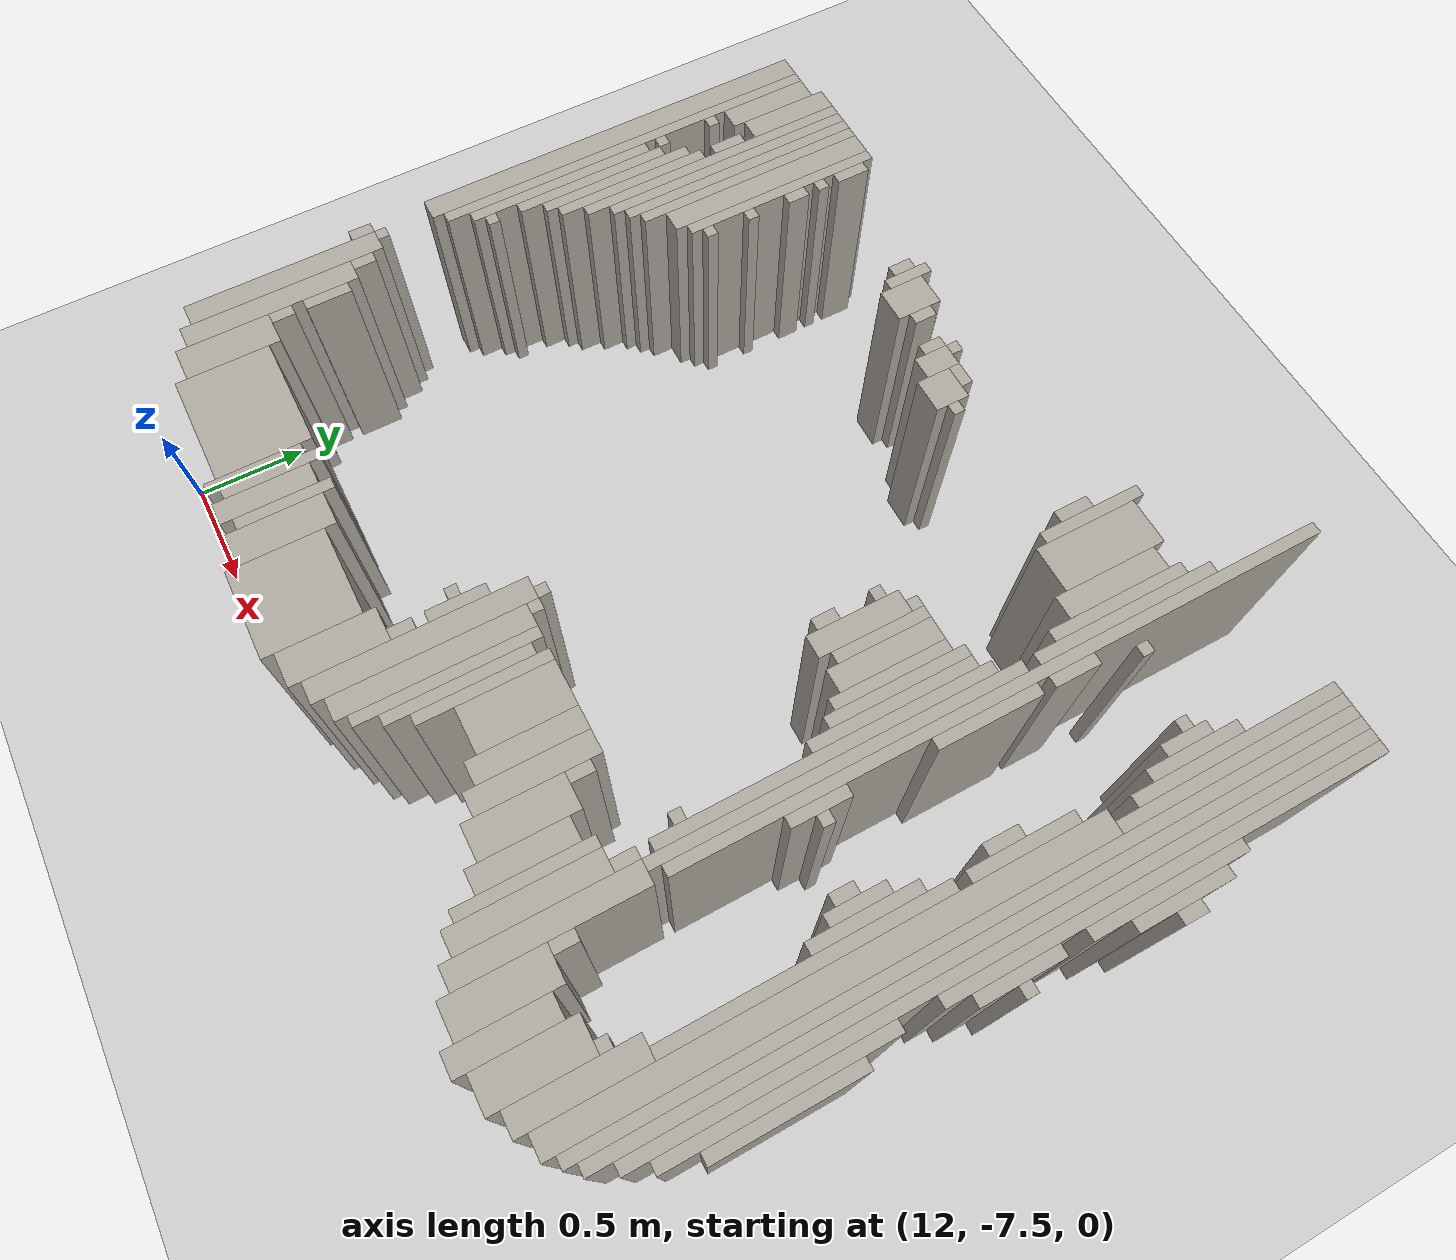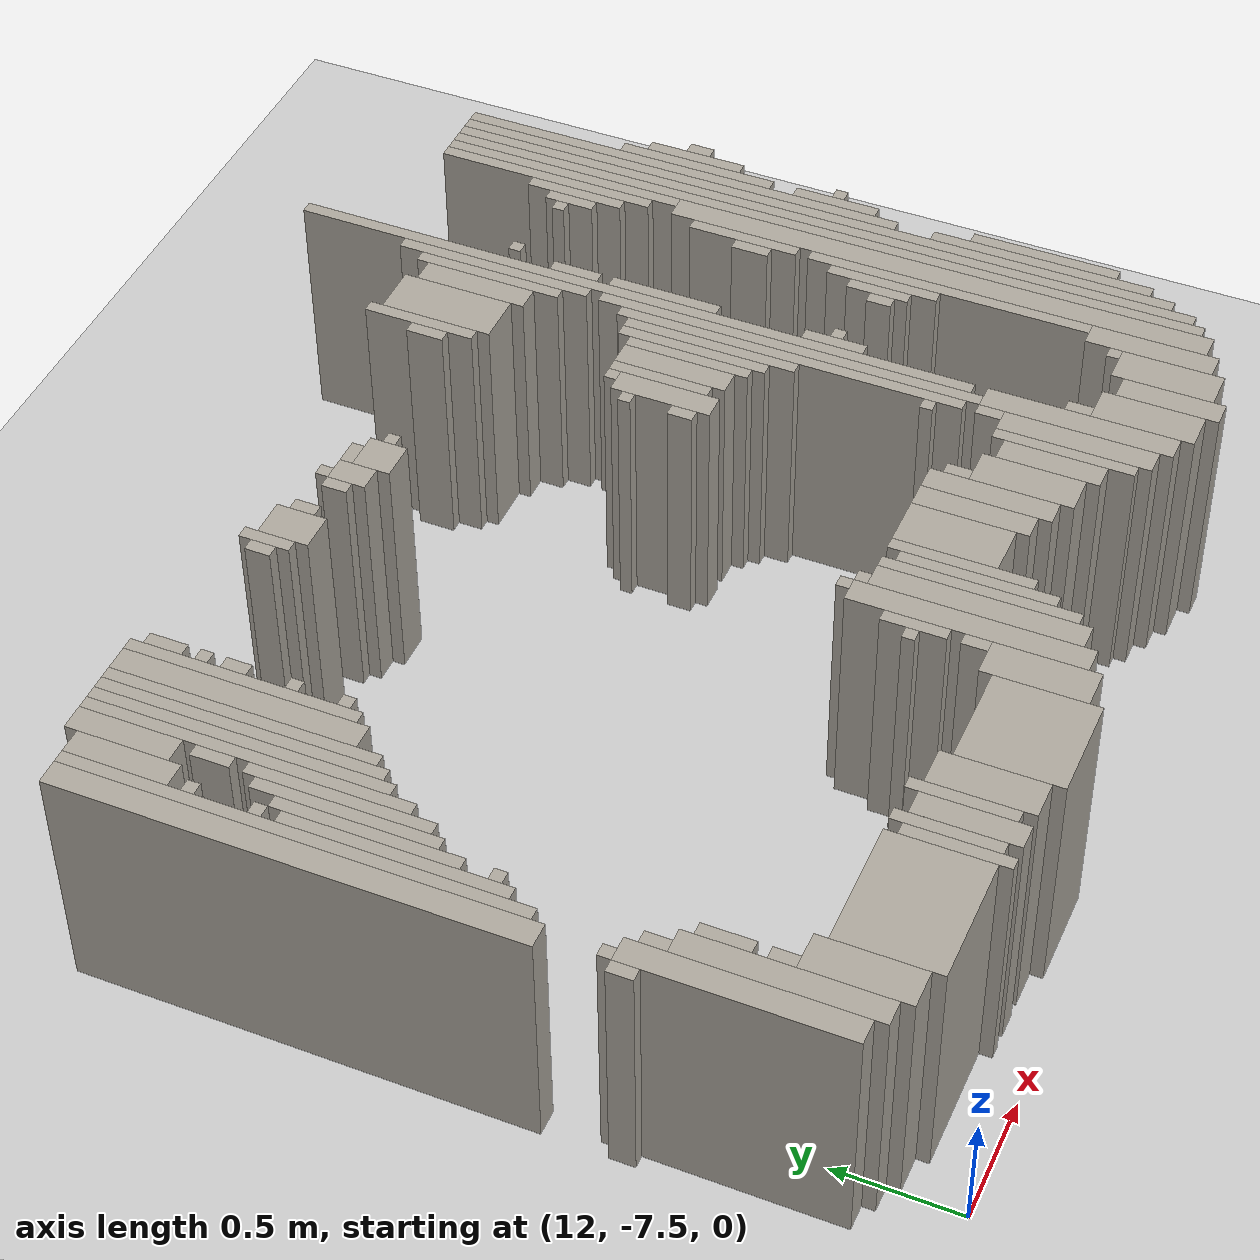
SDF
<sdf version="1.6">
 <world name="fr079_office">
  <include><uri>model://sun</uri></include>
  <include><uri>model://ground_plane</uri></include>
  <model name="fr079_office_walls">
   <static>true</static>
   <link name="w0003">
    <pose>13.252 -7.206 0.500 0 0 0</pose>
    <collision name="c"><geometry><box><size>0.400 0.400 1.000</size></box></geometry></collision>
    <visual name="v">
     <geometry><box><size>0.400 0.400 1.000</size></box></geometry>
     <material><ambient>0.68 0.66 0.62 1</ambient><diffuse>0.68 0.66 0.62 1</diffuse></material>
    </visual>
   </link>
   <link name="w0006">
    <pose>12.677 -7.156 0.500 0 0 0</pose>
    <collision name="c"><geometry><box><size>0.050 0.400 1.000</size></box></geometry></collision>
    <visual name="v">
     <geometry><box><size>0.050 0.400 1.000</size></box></geometry>
     <material><ambient>0.68 0.66 0.62 1</ambient><diffuse>0.68 0.66 0.62 1</diffuse></material>
    </visual>
   </link>
   <link name="w0007">
    <pose>12.802 -7.156 0.500 0 0 0</pose>
    <collision name="c"><geometry><box><size>0.100 0.400 1.000</size></box></geometry></collision>
    <visual name="v">
     <geometry><box><size>0.100 0.400 1.000</size></box></geometry>
     <material><ambient>0.68 0.66 0.62 1</ambient><diffuse>0.68 0.66 0.62 1</diffuse></material>
    </visual>
   </link>
   <link name="w0008">
    <pose>12.977 -7.156 0.500 0 0 0</pose>
    <collision name="c"><geometry><box><size>0.150 0.400 1.000</size></box></geometry></collision>
    <visual name="v">
     <geometry><box><size>0.150 0.400 1.000</size></box></geometry>
     <material><ambient>0.68 0.66 0.62 1</ambient><diffuse>0.68 0.66 0.62 1</diffuse></material>
    </visual>
   </link>
   <link name="w0009">
    <pose>13.527 -7.156 0.500 0 0 0</pose>
    <collision name="c"><geometry><box><size>0.150 0.400 1.000</size></box></geometry></collision>
    <visual name="v">
     <geometry><box><size>0.150 0.400 1.000</size></box></geometry>
     <material><ambient>0.68 0.66 0.62 1</ambient><diffuse>0.68 0.66 0.62 1</diffuse></material>
    </visual>
   </link>
   <link name="w0010">
    <pose>15.052 -7.156 0.500 0 0 0</pose>
    <collision name="c"><geometry><box><size>0.100 0.400 1.000</size></box></geometry></collision>
    <visual name="v">
     <geometry><box><size>0.100 0.400 1.000</size></box></geometry>
     <material><ambient>0.68 0.66 0.62 1</ambient><diffuse>0.68 0.66 0.62 1</diffuse></material>
    </visual>
   </link>
   <link name="w0022">
    <pose>12.402 -7.106 0.500 0 0 0</pose>
    <collision name="c"><geometry><box><size>0.500 0.400 1.000</size></box></geometry></collision>
    <visual name="v">
     <geometry><box><size>0.500 0.400 1.000</size></box></geometry>
     <material><ambient>0.68 0.66 0.62 1</ambient><diffuse>0.68 0.66 0.62 1</diffuse></material>
    </visual>
   </link>
   <link name="w0023">
    <pose>12.727 -7.106 0.500 0 0 0</pose>
    <collision name="c"><geometry><box><size>0.050 0.400 1.000</size></box></geometry></collision>
    <visual name="v">
     <geometry><box><size>0.050 0.400 1.000</size></box></geometry>
     <material><ambient>0.68 0.66 0.62 1</ambient><diffuse>0.68 0.66 0.62 1</diffuse></material>
    </visual>
   </link>
   <link name="w0024">
    <pose>12.877 -7.106 0.500 0 0 0</pose>
    <collision name="c"><geometry><box><size>0.050 0.400 1.000</size></box></geometry></collision>
    <visual name="v">
     <geometry><box><size>0.050 0.400 1.000</size></box></geometry>
     <material><ambient>0.68 0.66 0.62 1</ambient><diffuse>0.68 0.66 0.62 1</diffuse></material>
    </visual>
   </link>
   <link name="w0025">
    <pose>13.652 -6.856 0.500 0 0 0</pose>
    <collision name="c"><geometry><box><size>0.100 0.900 1.000</size></box></geometry></collision>
    <visual name="v">
     <geometry><box><size>0.100 0.900 1.000</size></box></geometry>
     <material><ambient>0.68 0.66 0.62 1</ambient><diffuse>0.68 0.66 0.62 1</diffuse></material>
    </visual>
   </link>
   <link name="w0026">
    <pose>14.927 -7.106 0.500 0 0 0</pose>
    <collision name="c"><geometry><box><size>0.150 0.400 1.000</size></box></geometry></collision>
    <visual name="v">
     <geometry><box><size>0.150 0.400 1.000</size></box></geometry>
     <material><ambient>0.68 0.66 0.62 1</ambient><diffuse>0.68 0.66 0.62 1</diffuse></material>
    </visual>
   </link>
   <link name="w0027">
    <pose>15.177 -7.106 0.500 0 0 0</pose>
    <collision name="c"><geometry><box><size>0.150 0.400 1.000</size></box></geometry></collision>
    <visual name="v">
     <geometry><box><size>0.150 0.400 1.000</size></box></geometry>
     <material><ambient>0.68 0.66 0.62 1</ambient><diffuse>0.68 0.66 0.62 1</diffuse></material>
    </visual>
   </link>
   <link name="w0047">
    <pose>12.077 -7.056 0.500 0 0 0</pose>
    <collision name="c"><geometry><box><size>0.150 0.400 1.000</size></box></geometry></collision>
    <visual name="v">
     <geometry><box><size>0.150 0.400 1.000</size></box></geometry>
     <material><ambient>0.68 0.66 0.62 1</ambient><diffuse>0.68 0.66 0.62 1</diffuse></material>
    </visual>
   </link>
   <link name="w0048">
    <pose>13.752 -6.856 0.500 0 0 0</pose>
    <collision name="c"><geometry><box><size>0.100 0.800 1.000</size></box></geometry></collision>
    <visual name="v">
     <geometry><box><size>0.100 0.800 1.000</size></box></geometry>
     <material><ambient>0.68 0.66 0.62 1</ambient><diffuse>0.68 0.66 0.62 1</diffuse></material>
    </visual>
   </link>
   <link name="w0049">
    <pose>14.802 -6.881 0.500 0 0 0</pose>
    <collision name="c"><geometry><box><size>0.100 0.750 1.000</size></box></geometry></collision>
    <visual name="v">
     <geometry><box><size>0.100 0.750 1.000</size></box></geometry>
     <material><ambient>0.68 0.66 0.62 1</ambient><diffuse>0.68 0.66 0.62 1</diffuse></material>
    </visual>
   </link>
   <link name="w0050">
    <pose>15.302 -7.006 0.500 0 0 0</pose>
    <collision name="c"><geometry><box><size>0.100 0.500 1.000</size></box></geometry></collision>
    <visual name="v">
     <geometry><box><size>0.100 0.500 1.000</size></box></geometry>
     <material><ambient>0.68 0.66 0.62 1</ambient><diffuse>0.68 0.66 0.62 1</diffuse></material>
    </visual>
   </link>
   <link name="w0072">
    <pose>11.952 -6.831 0.500 0 0 0</pose>
    <collision name="c"><geometry><box><size>0.100 0.750 1.000</size></box></geometry></collision>
    <visual name="v">
     <geometry><box><size>0.100 0.750 1.000</size></box></geometry>
     <material><ambient>0.68 0.66 0.62 1</ambient><diffuse>0.68 0.66 0.62 1</diffuse></material>
    </visual>
   </link>
   <link name="w0073">
    <pose>13.827 -6.831 0.500 0 0 0</pose>
    <collision name="c"><geometry><box><size>0.050 0.750 1.000</size></box></geometry></collision>
    <visual name="v">
     <geometry><box><size>0.050 0.750 1.000</size></box></geometry>
     <material><ambient>0.68 0.66 0.62 1</ambient><diffuse>0.68 0.66 0.62 1</diffuse></material>
    </visual>
   </link>
   <link name="w0074">
    <pose>14.702 -6.906 0.500 0 0 0</pose>
    <collision name="c"><geometry><box><size>0.100 0.600 1.000</size></box></geometry></collision>
    <visual name="v">
     <geometry><box><size>0.100 0.600 1.000</size></box></geometry>
     <material><ambient>0.68 0.66 0.62 1</ambient><diffuse>0.68 0.66 0.62 1</diffuse></material>
    </visual>
   </link>
   <link name="w0075">
    <pose>15.402 -6.106 0.500 0 0 0</pose>
    <collision name="c"><geometry><box><size>0.100 2.200 1.000</size></box></geometry></collision>
    <visual name="v">
     <geometry><box><size>0.100 2.200 1.000</size></box></geometry>
     <material><ambient>0.68 0.66 0.62 1</ambient><diffuse>0.68 0.66 0.62 1</diffuse></material>
    </visual>
   </link>
   <link name="w0098">
    <pose>11.852 -6.731 0.500 0 0 0</pose>
    <collision name="c"><geometry><box><size>0.100 0.850 1.000</size></box></geometry></collision>
    <visual name="v">
     <geometry><box><size>0.100 0.850 1.000</size></box></geometry>
     <material><ambient>0.68 0.66 0.62 1</ambient><diffuse>0.68 0.66 0.62 1</diffuse></material>
    </visual>
   </link>
   <link name="w0099">
    <pose>14.627 -6.881 0.500 0 0 0</pose>
    <collision name="c"><geometry><box><size>0.050 0.550 1.000</size></box></geometry></collision>
    <visual name="v">
     <geometry><box><size>0.050 0.550 1.000</size></box></geometry>
     <material><ambient>0.68 0.66 0.62 1</ambient><diffuse>0.68 0.66 0.62 1</diffuse></material>
    </visual>
   </link>
   <link name="w0100">
    <pose>15.477 -5.581 0.500 0 0 0</pose>
    <collision name="c"><geometry><box><size>0.050 3.150 1.000</size></box></geometry></collision>
    <visual name="v">
     <geometry><box><size>0.050 3.150 1.000</size></box></geometry>
     <material><ambient>0.68 0.66 0.62 1</ambient><diffuse>0.68 0.66 0.62 1</diffuse></material>
    </visual>
   </link>
   <link name="w0121">
    <pose>13.877 -6.806 0.500 0 0 0</pose>
    <collision name="c"><geometry><box><size>0.050 0.600 1.000</size></box></geometry></collision>
    <visual name="v">
     <geometry><box><size>0.050 0.600 1.000</size></box></geometry>
     <material><ambient>0.68 0.66 0.62 1</ambient><diffuse>0.68 0.66 0.62 1</diffuse></material>
    </visual>
   </link>
   <link name="w0122">
    <pose>15.527 -5.556 0.500 0 0 0</pose>
    <collision name="c"><geometry><box><size>0.050 3.100 1.000</size></box></geometry></collision>
    <visual name="v">
     <geometry><box><size>0.050 3.100 1.000</size></box></geometry>
     <material><ambient>0.68 0.66 0.62 1</ambient><diffuse>0.68 0.66 0.62 1</diffuse></material>
    </visual>
   </link>
   <link name="w0134">
    <pose>14.552 -6.856 0.500 0 0 0</pose>
    <collision name="c"><geometry><box><size>0.100 0.400 1.000</size></box></geometry></collision>
    <visual name="v">
     <geometry><box><size>0.100 0.400 1.000</size></box></geometry>
     <material><ambient>0.68 0.66 0.62 1</ambient><diffuse>0.68 0.66 0.62 1</diffuse></material>
    </visual>
   </link>
   <link name="w0148">
    <pose>13.927 -6.731 0.500 0 0 0</pose>
    <collision name="c"><geometry><box><size>0.050 0.550 1.000</size></box></geometry></collision>
    <visual name="v">
     <geometry><box><size>0.050 0.550 1.000</size></box></geometry>
     <material><ambient>0.68 0.66 0.62 1</ambient><diffuse>0.68 0.66 0.62 1</diffuse></material>
    </visual>
   </link>
   <link name="w0149">
    <pose>14.427 -6.806 0.500 0 0 0</pose>
    <collision name="c"><geometry><box><size>0.150 0.400 1.000</size></box></geometry></collision>
    <visual name="v">
     <geometry><box><size>0.150 0.400 1.000</size></box></geometry>
     <material><ambient>0.68 0.66 0.62 1</ambient><diffuse>0.68 0.66 0.62 1</diffuse></material>
    </visual>
   </link>
   <link name="w0150">
    <pose>15.577 -5.506 0.500 0 0 0</pose>
    <collision name="c"><geometry><box><size>0.050 3.000 1.000</size></box></geometry></collision>
    <visual name="v">
     <geometry><box><size>0.050 3.000 1.000</size></box></geometry>
     <material><ambient>0.68 0.66 0.62 1</ambient><diffuse>0.68 0.66 0.62 1</diffuse></material>
    </visual>
   </link>
   <link name="w0160">
    <pose>13.577 -6.906 0.500 0 0 0</pose>
    <collision name="c"><geometry><box><size>0.050 0.100 1.000</size></box></geometry></collision>
    <visual name="v">
     <geometry><box><size>0.050 0.100 1.000</size></box></geometry>
     <material><ambient>0.68 0.66 0.62 1</ambient><diffuse>0.68 0.66 0.62 1</diffuse></material>
    </visual>
   </link>
   <link name="w0161">
    <pose>14.302 -6.706 0.500 0 0 0</pose>
    <collision name="c"><geometry><box><size>0.100 0.500 1.000</size></box></geometry></collision>
    <visual name="v">
     <geometry><box><size>0.100 0.500 1.000</size></box></geometry>
     <material><ambient>0.68 0.66 0.62 1</ambient><diffuse>0.68 0.66 0.62 1</diffuse></material>
    </visual>
   </link>
   <link name="w0174">
    <pose>14.202 -6.681 0.500 0 0 0</pose>
    <collision name="c"><geometry><box><size>0.100 0.450 1.000</size></box></geometry></collision>
    <visual name="v">
     <geometry><box><size>0.100 0.450 1.000</size></box></geometry>
     <material><ambient>0.68 0.66 0.62 1</ambient><diffuse>0.68 0.66 0.62 1</diffuse></material>
    </visual>
   </link>
   <link name="w0175">
    <pose>14.877 -6.856 0.500 0 0 0</pose>
    <collision name="c"><geometry><box><size>0.050 0.100 1.000</size></box></geometry></collision>
    <visual name="v">
     <geometry><box><size>0.050 0.100 1.000</size></box></geometry>
     <material><ambient>0.68 0.66 0.62 1</ambient><diffuse>0.68 0.66 0.62 1</diffuse></material>
    </visual>
   </link>
   <link name="w0176">
    <pose>15.227 -6.881 0.500 0 0 0</pose>
    <collision name="c"><geometry><box><size>0.050 0.050 1.000</size></box></geometry></collision>
    <visual name="v">
     <geometry><box><size>0.050 0.050 1.000</size></box></geometry>
     <material><ambient>0.68 0.66 0.62 1</ambient><diffuse>0.68 0.66 0.62 1</diffuse></material>
    </visual>
   </link>
   <link name="w0177">
    <pose>15.627 -6.456 0.500 0 0 0</pose>
    <collision name="c"><geometry><box><size>0.050 0.900 1.000</size></box></geometry></collision>
    <visual name="v">
     <geometry><box><size>0.050 0.900 1.000</size></box></geometry>
     <material><ambient>0.68 0.66 0.62 1</ambient><diffuse>0.68 0.66 0.62 1</diffuse></material>
    </visual>
   </link>
   <link name="w0195">
    <pose>12.027 -6.806 0.500 0 0 0</pose>
    <collision name="c"><geometry><box><size>0.050 0.100 1.000</size></box></geometry></collision>
    <visual name="v">
     <geometry><box><size>0.050 0.100 1.000</size></box></geometry>
     <material><ambient>0.68 0.66 0.62 1</ambient><diffuse>0.68 0.66 0.62 1</diffuse></material>
    </visual>
   </link>
   <link name="w0196">
    <pose>14.052 -6.656 0.500 0 0 0</pose>
    <collision name="c"><geometry><box><size>0.200 0.400 1.000</size></box></geometry></collision>
    <visual name="v">
     <geometry><box><size>0.200 0.400 1.000</size></box></geometry>
     <material><ambient>0.68 0.66 0.62 1</ambient><diffuse>0.68 0.66 0.62 1</diffuse></material>
    </visual>
   </link>
   <link name="w0209">
    <pose>13.577 -6.681 0.500 0 0 0</pose>
    <collision name="c"><geometry><box><size>0.050 0.250 1.000</size></box></geometry></collision>
    <visual name="v">
     <geometry><box><size>0.050 0.250 1.000</size></box></geometry>
     <material><ambient>0.68 0.66 0.62 1</ambient><diffuse>0.68 0.66 0.62 1</diffuse></material>
    </visual>
   </link>
   <link name="w0228">
    <pose>15.327 -6.181 0.500 0 0 0</pose>
    <collision name="c"><geometry><box><size>0.050 1.150 1.000</size></box></geometry></collision>
    <visual name="v">
     <geometry><box><size>0.050 1.150 1.000</size></box></geometry>
     <material><ambient>0.68 0.66 0.62 1</ambient><diffuse>0.68 0.66 0.62 1</diffuse></material>
    </visual>
   </link>
   <link name="w0229">
    <pose>15.677 -6.456 0.500 0 0 0</pose>
    <collision name="c"><geometry><box><size>0.050 0.600 1.000</size></box></geometry></collision>
    <visual name="v">
     <geometry><box><size>0.050 0.600 1.000</size></box></geometry>
     <material><ambient>0.68 0.66 0.62 1</ambient><diffuse>0.68 0.66 0.62 1</diffuse></material>
    </visual>
   </link>
   <link name="w0242">
    <pose>12.027 -6.606 0.500 0 0 0</pose>
    <collision name="c"><geometry><box><size>0.050 0.200 1.000</size></box></geometry></collision>
    <visual name="v">
     <geometry><box><size>0.050 0.200 1.000</size></box></geometry>
     <material><ambient>0.68 0.66 0.62 1</ambient><diffuse>0.68 0.66 0.62 1</diffuse></material>
    </visual>
   </link>
   <link name="w0243">
    <pose>13.527 -6.681 0.500 0 0 0</pose>
    <collision name="c"><geometry><box><size>0.050 0.050 1.000</size></box></geometry></collision>
    <visual name="v">
     <geometry><box><size>0.050 0.050 1.000</size></box></geometry>
     <material><ambient>0.68 0.66 0.62 1</ambient><diffuse>0.68 0.66 0.62 1</diffuse></material>
    </visual>
   </link>
   <link name="w0266">
    <pose>14.377 -6.556 0.500 0 0 0</pose>
    <collision name="c"><geometry><box><size>0.050 0.100 1.000</size></box></geometry></collision>
    <visual name="v">
     <geometry><box><size>0.050 0.100 1.000</size></box></geometry>
     <material><ambient>0.68 0.66 0.62 1</ambient><diffuse>0.68 0.66 0.62 1</diffuse></material>
    </visual>
   </link>
   <link name="w0267">
    <pose>14.727 -6.556 0.500 0 0 0</pose>
    <collision name="c"><geometry><box><size>0.050 0.100 1.000</size></box></geometry></collision>
    <visual name="v">
     <geometry><box><size>0.050 0.100 1.000</size></box></geometry>
     <material><ambient>0.68 0.66 0.62 1</ambient><diffuse>0.68 0.66 0.62 1</diffuse></material>
    </visual>
   </link>
   <link name="w0295">
    <pose>14.777 -5.731 0.500 0 0 0</pose>
    <collision name="c"><geometry><box><size>0.050 1.550 1.000</size></box></geometry></collision>
    <visual name="v">
     <geometry><box><size>0.050 1.550 1.000</size></box></geometry>
     <material><ambient>0.68 0.66 0.62 1</ambient><diffuse>0.68 0.66 0.62 1</diffuse></material>
    </visual>
   </link>
   <link name="w0310">
    <pose>11.927 -6.406 0.500 0 0 0</pose>
    <collision name="c"><geometry><box><size>0.050 0.100 1.000</size></box></geometry></collision>
    <visual name="v">
     <geometry><box><size>0.050 0.100 1.000</size></box></geometry>
     <material><ambient>0.68 0.66 0.62 1</ambient><diffuse>0.68 0.66 0.62 1</diffuse></material>
    </visual>
   </link>
   <link name="w0311">
    <pose>13.727 -6.431 0.500 0 0 0</pose>
    <collision name="c"><geometry><box><size>0.050 0.050 1.000</size></box></geometry></collision>
    <visual name="v">
     <geometry><box><size>0.050 0.050 1.000</size></box></geometry>
     <material><ambient>0.68 0.66 0.62 1</ambient><diffuse>0.68 0.66 0.62 1</diffuse></material>
    </visual>
   </link>
   <link name="w0312">
    <pose>14.727 -5.756 0.500 0 0 0</pose>
    <collision name="c"><geometry><box><size>0.050 1.400 1.000</size></box></geometry></collision>
    <visual name="v">
     <geometry><box><size>0.050 1.400 1.000</size></box></geometry>
     <material><ambient>0.68 0.66 0.62 1</ambient><diffuse>0.68 0.66 0.62 1</diffuse></material>
    </visual>
   </link>
   <link name="w0313">
    <pose>14.827 -5.056 0.500 0 0 0</pose>
    <collision name="c"><geometry><box><size>0.050 2.800 1.000</size></box></geometry></collision>
    <visual name="v">
     <geometry><box><size>0.050 2.800 1.000</size></box></geometry>
     <material><ambient>0.68 0.66 0.62 1</ambient><diffuse>0.68 0.66 0.62 1</diffuse></material>
    </visual>
   </link>
   <link name="w0333">
    <pose>11.777 -6.356 0.500 0 0 0</pose>
    <collision name="c"><geometry><box><size>0.050 0.100 1.000</size></box></geometry></collision>
    <visual name="v">
     <geometry><box><size>0.050 0.100 1.000</size></box></geometry>
     <material><ambient>0.68 0.66 0.62 1</ambient><diffuse>0.68 0.66 0.62 1</diffuse></material>
    </visual>
   </link>
   <link name="w0334">
    <pose>13.677 -6.381 0.500 0 0 0</pose>
    <collision name="c"><geometry><box><size>0.050 0.050 1.000</size></box></geometry></collision>
    <visual name="v">
     <geometry><box><size>0.050 0.050 1.000</size></box></geometry>
     <material><ambient>0.68 0.66 0.62 1</ambient><diffuse>0.68 0.66 0.62 1</diffuse></material>
    </visual>
   </link>
   <link name="w0348">
    <pose>14.677 -6.331 0.500 0 0 0</pose>
    <collision name="c"><geometry><box><size>0.050 0.050 1.000</size></box></geometry></collision>
    <visual name="v">
     <geometry><box><size>0.050 0.050 1.000</size></box></geometry>
     <material><ambient>0.68 0.66 0.62 1</ambient><diffuse>0.68 0.66 0.62 1</diffuse></material>
    </visual>
   </link>
   <link name="w0359">
    <pose>11.827 -6.281 0.500 0 0 0</pose>
    <collision name="c"><geometry><box><size>0.050 0.050 1.000</size></box></geometry></collision>
    <visual name="v">
     <geometry><box><size>0.050 0.050 1.000</size></box></geometry>
     <material><ambient>0.68 0.66 0.62 1</ambient><diffuse>0.68 0.66 0.62 1</diffuse></material>
    </visual>
   </link>
   <link name="w0391">
    <pose>15.277 -5.931 0.500 0 0 0</pose>
    <collision name="c"><geometry><box><size>0.050 0.450 1.000</size></box></geometry></collision>
    <visual name="v">
     <geometry><box><size>0.050 0.450 1.000</size></box></geometry>
     <material><ambient>0.68 0.66 0.62 1</ambient><diffuse>0.68 0.66 0.62 1</diffuse></material>
    </visual>
   </link>
   <link name="w0417">
    <pose>11.802 -5.156 0.500 0 0 0</pose>
    <collision name="c"><geometry><box><size>0.100 1.800 1.000</size></box></geometry></collision>
    <visual name="v">
     <geometry><box><size>0.100 1.800 1.000</size></box></geometry>
     <material><ambient>0.68 0.66 0.62 1</ambient><diffuse>0.68 0.66 0.62 1</diffuse></material>
    </visual>
   </link>
   <link name="w0418">
    <pose>15.227 -5.931 0.500 0 0 0</pose>
    <collision name="c"><geometry><box><size>0.050 0.250 1.000</size></box></geometry></collision>
    <visual name="v">
     <geometry><box><size>0.050 0.250 1.000</size></box></geometry>
     <material><ambient>0.68 0.66 0.62 1</ambient><diffuse>0.68 0.66 0.62 1</diffuse></material>
    </visual>
   </link>
   <link name="w0429">
    <pose>11.877 -5.131 0.500 0 0 0</pose>
    <collision name="c"><geometry><box><size>0.050 1.750 1.000</size></box></geometry></collision>
    <visual name="v">
     <geometry><box><size>0.050 1.750 1.000</size></box></geometry>
     <material><ambient>0.68 0.66 0.62 1</ambient><diffuse>0.68 0.66 0.62 1</diffuse></material>
    </visual>
   </link>
   <link name="w0430">
    <pose>14.877 -5.881 0.500 0 0 0</pose>
    <collision name="c"><geometry><box><size>0.050 0.250 1.000</size></box></geometry></collision>
    <visual name="v">
     <geometry><box><size>0.050 0.250 1.000</size></box></geometry>
     <material><ambient>0.68 0.66 0.62 1</ambient><diffuse>0.68 0.66 0.62 1</diffuse></material>
    </visual>
   </link>
   <link name="w0431">
    <pose>15.177 -5.956 0.500 0 0 0</pose>
    <collision name="c"><geometry><box><size>0.050 0.100 1.000</size></box></geometry></collision>
    <visual name="v">
     <geometry><box><size>0.050 0.100 1.000</size></box></geometry>
     <material><ambient>0.68 0.66 0.62 1</ambient><diffuse>0.68 0.66 0.62 1</diffuse></material>
    </visual>
   </link>
   <link name="w0462">
    <pose>11.927 -5.481 0.500 0 0 0</pose>
    <collision name="c"><geometry><box><size>0.050 0.850 1.000</size></box></geometry></collision>
    <visual name="v">
     <geometry><box><size>0.050 0.850 1.000</size></box></geometry>
     <material><ambient>0.68 0.66 0.62 1</ambient><diffuse>0.68 0.66 0.62 1</diffuse></material>
    </visual>
   </link>
   <link name="w0463">
    <pose>14.927 -5.881 0.500 0 0 0</pose>
    <collision name="c"><geometry><box><size>0.050 0.050 1.000</size></box></geometry></collision>
    <visual name="v">
     <geometry><box><size>0.050 0.050 1.000</size></box></geometry>
     <material><ambient>0.68 0.66 0.62 1</ambient><diffuse>0.68 0.66 0.62 1</diffuse></material>
    </visual>
   </link>
   <link name="w0476">
    <pose>11.977 -5.831 0.500 0 0 0</pose>
    <collision name="c"><geometry><box><size>0.050 0.050 1.000</size></box></geometry></collision>
    <visual name="v">
     <geometry><box><size>0.050 0.050 1.000</size></box></geometry>
     <material><ambient>0.68 0.66 0.62 1</ambient><diffuse>0.68 0.66 0.62 1</diffuse></material>
    </visual>
   </link>
   <link name="w0477">
    <pose>15.627 -4.931 0.500 0 0 0</pose>
    <collision name="c"><geometry><box><size>0.050 1.850 1.000</size></box></geometry></collision>
    <visual name="v">
     <geometry><box><size>0.050 1.850 1.000</size></box></geometry>
     <material><ambient>0.68 0.66 0.62 1</ambient><diffuse>0.68 0.66 0.62 1</diffuse></material>
    </visual>
   </link>
   <link name="w0489">
    <pose>14.677 -5.456 0.500 0 0 0</pose>
    <collision name="c"><geometry><box><size>0.050 0.700 1.000</size></box></geometry></collision>
    <visual name="v">
     <geometry><box><size>0.050 0.700 1.000</size></box></geometry>
     <material><ambient>0.68 0.66 0.62 1</ambient><diffuse>0.68 0.66 0.62 1</diffuse></material>
    </visual>
   </link>
   <link name="w0505">
    <pose>15.677 -5.581 0.500 0 0 0</pose>
    <collision name="c"><geometry><box><size>0.050 0.350 1.000</size></box></geometry></collision>
    <visual name="v">
     <geometry><box><size>0.050 0.350 1.000</size></box></geometry>
     <material><ambient>0.68 0.66 0.62 1</ambient><diffuse>0.68 0.66 0.62 1</diffuse></material>
    </visual>
   </link>
   <link name="w0517">
    <pose>11.977 -5.356 0.500 0 0 0</pose>
    <collision name="c"><geometry><box><size>0.050 0.700 1.000</size></box></geometry></collision>
    <visual name="v">
     <geometry><box><size>0.050 0.700 1.000</size></box></geometry>
     <material><ambient>0.68 0.66 0.62 1</ambient><diffuse>0.68 0.66 0.62 1</diffuse></material>
    </visual>
   </link>
   <link name="w0518">
    <pose>14.627 -5.406 0.500 0 0 0</pose>
    <collision name="c"><geometry><box><size>0.050 0.600 1.000</size></box></geometry></collision>
    <visual name="v">
     <geometry><box><size>0.050 0.600 1.000</size></box></geometry>
     <material><ambient>0.68 0.66 0.62 1</ambient><diffuse>0.68 0.66 0.62 1</diffuse></material>
    </visual>
   </link>
   <link name="w0526">
    <pose>14.577 -5.406 0.500 0 0 0</pose>
    <collision name="c"><geometry><box><size>0.050 0.500 1.000</size></box></geometry></collision>
    <visual name="v">
     <geometry><box><size>0.050 0.500 1.000</size></box></geometry>
     <material><ambient>0.68 0.66 0.62 1</ambient><diffuse>0.68 0.66 0.62 1</diffuse></material>
    </visual>
   </link>
   <link name="w0538">
    <pose>12.027 -5.256 0.500 0 0 0</pose>
    <collision name="c"><geometry><box><size>0.050 0.700 1.000</size></box></geometry></collision>
    <visual name="v">
     <geometry><box><size>0.050 0.700 1.000</size></box></geometry>
     <material><ambient>0.68 0.66 0.62 1</ambient><diffuse>0.68 0.66 0.62 1</diffuse></material>
    </visual>
   </link>
   <link name="w0539">
    <pose>14.352 -5.406 0.500 0 0 0</pose>
    <collision name="c"><geometry><box><size>0.100 0.400 1.000</size></box></geometry></collision>
    <visual name="v">
     <geometry><box><size>0.100 0.400 1.000</size></box></geometry>
     <material><ambient>0.68 0.66 0.62 1</ambient><diffuse>0.68 0.66 0.62 1</diffuse></material>
    </visual>
   </link>
   <link name="w0540">
    <pose>14.502 -5.381 0.500 0 0 0</pose>
    <collision name="c"><geometry><box><size>0.100 0.450 1.000</size></box></geometry></collision>
    <visual name="v">
     <geometry><box><size>0.100 0.450 1.000</size></box></geometry>
     <material><ambient>0.68 0.66 0.62 1</ambient><diffuse>0.68 0.66 0.62 1</diffuse></material>
    </visual>
   </link>
   <link name="w0541">
    <pose>15.727 -5.581 0.500 0 0 0</pose>
    <collision name="c"><geometry><box><size>0.050 0.050 1.000</size></box></geometry></collision>
    <visual name="v">
     <geometry><box><size>0.050 0.050 1.000</size></box></geometry>
     <material><ambient>0.68 0.66 0.62 1</ambient><diffuse>0.68 0.66 0.62 1</diffuse></material>
    </visual>
   </link>
   <link name="w0549">
    <pose>12.077 -5.206 0.500 0 0 0</pose>
    <collision name="c"><geometry><box><size>0.050 0.700 1.000</size></box></geometry></collision>
    <visual name="v">
     <geometry><box><size>0.050 0.700 1.000</size></box></geometry>
     <material><ambient>0.68 0.66 0.62 1</ambient><diffuse>0.68 0.66 0.62 1</diffuse></material>
    </visual>
   </link>
   <link name="w0550">
    <pose>14.277 -5.506 0.500 0 0 0</pose>
    <collision name="c"><geometry><box><size>0.050 0.100 1.000</size></box></geometry></collision>
    <visual name="v">
     <geometry><box><size>0.050 0.100 1.000</size></box></geometry>
     <material><ambient>0.68 0.66 0.62 1</ambient><diffuse>0.68 0.66 0.62 1</diffuse></material>
    </visual>
   </link>
   <link name="w0551">
    <pose>14.427 -5.356 0.500 0 0 0</pose>
    <collision name="c"><geometry><box><size>0.050 0.400 1.000</size></box></geometry></collision>
    <visual name="v">
     <geometry><box><size>0.050 0.400 1.000</size></box></geometry>
     <material><ambient>0.68 0.66 0.62 1</ambient><diffuse>0.68 0.66 0.62 1</diffuse></material>
    </visual>
   </link>
   <link name="w0552">
    <pose>15.327 -5.331 0.500 0 0 0</pose>
    <collision name="c"><geometry><box><size>0.050 0.450 1.000</size></box></geometry></collision>
    <visual name="v">
     <geometry><box><size>0.050 0.450 1.000</size></box></geometry>
     <material><ambient>0.68 0.66 0.62 1</ambient><diffuse>0.68 0.66 0.62 1</diffuse></material>
    </visual>
   </link>
   <link name="w0571">
    <pose>12.127 -4.831 0.500 0 0 0</pose>
    <collision name="c"><geometry><box><size>0.050 1.250 1.000</size></box></geometry></collision>
    <visual name="v">
     <geometry><box><size>0.050 1.250 1.000</size></box></geometry>
     <material><ambient>0.68 0.66 0.62 1</ambient><diffuse>0.68 0.66 0.62 1</diffuse></material>
    </visual>
   </link>
   <link name="w0572">
    <pose>15.277 -5.381 0.500 0 0 0</pose>
    <collision name="c"><geometry><box><size>0.050 0.150 1.000</size></box></geometry></collision>
    <visual name="v">
     <geometry><box><size>0.050 0.150 1.000</size></box></geometry>
     <material><ambient>0.68 0.66 0.62 1</ambient><diffuse>0.68 0.66 0.62 1</diffuse></material>
    </visual>
   </link>
   <link name="w0583">
    <pose>14.877 -5.181 0.500 0 0 0</pose>
    <collision name="c"><geometry><box><size>0.050 0.450 1.000</size></box></geometry></collision>
    <visual name="v">
     <geometry><box><size>0.050 0.450 1.000</size></box></geometry>
     <material><ambient>0.68 0.66 0.62 1</ambient><diffuse>0.68 0.66 0.62 1</diffuse></material>
    </visual>
   </link>
   <link name="w0597">
    <pose>12.177 -4.781 0.500 0 0 0</pose>
    <collision name="c"><geometry><box><size>0.050 1.150 1.000</size></box></geometry></collision>
    <visual name="v">
     <geometry><box><size>0.050 1.150 1.000</size></box></geometry>
     <material><ambient>0.68 0.66 0.62 1</ambient><diffuse>0.68 0.66 0.62 1</diffuse></material>
    </visual>
   </link>
   <link name="w0609">
    <pose>12.227 -4.756 0.500 0 0 0</pose>
    <collision name="c"><geometry><box><size>0.050 1.100 1.000</size></box></geometry></collision>
    <visual name="v">
     <geometry><box><size>0.050 1.100 1.000</size></box></geometry>
     <material><ambient>0.68 0.66 0.62 1</ambient><diffuse>0.68 0.66 0.62 1</diffuse></material>
    </visual>
   </link>
   <link name="w0610">
    <pose>14.277 -5.281 0.500 0 0 0</pose>
    <collision name="c"><geometry><box><size>0.050 0.050 1.000</size></box></geometry></collision>
    <visual name="v">
     <geometry><box><size>0.050 0.050 1.000</size></box></geometry>
     <material><ambient>0.68 0.66 0.62 1</ambient><diffuse>0.68 0.66 0.62 1</diffuse></material>
    </visual>
   </link>
   <link name="w0611">
    <pose>15.677 -4.981 0.500 0 0 0</pose>
    <collision name="c"><geometry><box><size>0.050 0.650 1.000</size></box></geometry></collision>
    <visual name="v">
     <geometry><box><size>0.050 0.650 1.000</size></box></geometry>
     <material><ambient>0.68 0.66 0.62 1</ambient><diffuse>0.68 0.66 0.62 1</diffuse></material>
    </visual>
   </link>
   <link name="w0626">
    <pose>12.277 -4.731 0.500 0 0 0</pose>
    <collision name="c"><geometry><box><size>0.050 1.050 1.000</size></box></geometry></collision>
    <visual name="v">
     <geometry><box><size>0.050 1.050 1.000</size></box></geometry>
     <material><ambient>0.68 0.66 0.62 1</ambient><diffuse>0.68 0.66 0.62 1</diffuse></material>
    </visual>
   </link>
   <link name="w0645">
    <pose>14.377 -5.181 0.500 0 0 0</pose>
    <collision name="c"><geometry><box><size>0.050 0.050 1.000</size></box></geometry></collision>
    <visual name="v">
     <geometry><box><size>0.050 0.050 1.000</size></box></geometry>
     <material><ambient>0.68 0.66 0.62 1</ambient><diffuse>0.68 0.66 0.62 1</diffuse></material>
    </visual>
   </link>
   <link name="w0655">
    <pose>12.352 -4.681 0.500 0 0 0</pose>
    <collision name="c"><geometry><box><size>0.100 0.950 1.000</size></box></geometry></collision>
    <visual name="v">
     <geometry><box><size>0.100 0.950 1.000</size></box></geometry>
     <material><ambient>0.68 0.66 0.62 1</ambient><diffuse>0.68 0.66 0.62 1</diffuse></material>
    </visual>
   </link>
   <link name="w0656">
    <pose>15.727 -4.956 0.500 0 0 0</pose>
    <collision name="c"><geometry><box><size>0.050 0.400 1.000</size></box></geometry></collision>
    <visual name="v">
     <geometry><box><size>0.050 0.400 1.000</size></box></geometry>
     <material><ambient>0.68 0.66 0.62 1</ambient><diffuse>0.68 0.66 0.62 1</diffuse></material>
    </visual>
   </link>
   <link name="w0669">
    <pose>12.427 -4.656 0.500 0 0 0</pose>
    <collision name="c"><geometry><box><size>0.050 0.900 1.000</size></box></geometry></collision>
    <visual name="v">
     <geometry><box><size>0.050 0.900 1.000</size></box></geometry>
     <material><ambient>0.68 0.66 0.62 1</ambient><diffuse>0.68 0.66 0.62 1</diffuse></material>
    </visual>
   </link>
   <link name="w0679">
    <pose>12.477 -5.031 0.500 0 0 0</pose>
    <collision name="c"><geometry><box><size>0.050 0.050 1.000</size></box></geometry></collision>
    <visual name="v">
     <geometry><box><size>0.050 0.050 1.000</size></box></geometry>
     <material><ambient>0.68 0.66 0.62 1</ambient><diffuse>0.68 0.66 0.62 1</diffuse></material>
    </visual>
   </link>
   <link name="w0686">
    <pose>11.927 -4.981 0.500 0 0 0</pose>
    <collision name="c"><geometry><box><size>0.050 0.050 1.000</size></box></geometry></collision>
    <visual name="v">
     <geometry><box><size>0.050 0.050 1.000</size></box></geometry>
     <material><ambient>0.68 0.66 0.62 1</ambient><diffuse>0.68 0.66 0.62 1</diffuse></material>
    </visual>
   </link>
   <link name="w0687">
    <pose>15.427 -4.506 0.500 0 0 0</pose>
    <collision name="c"><geometry><box><size>0.050 1.000 1.000</size></box></geometry></collision>
    <visual name="v">
     <geometry><box><size>0.050 1.000 1.000</size></box></geometry>
     <material><ambient>0.68 0.66 0.62 1</ambient><diffuse>0.68 0.66 0.62 1</diffuse></material>
    </visual>
   </link>
   <link name="w0688">
    <pose>15.777 -4.956 0.500 0 0 0</pose>
    <collision name="c"><geometry><box><size>0.050 0.100 1.000</size></box></geometry></collision>
    <visual name="v">
     <geometry><box><size>0.050 0.100 1.000</size></box></geometry>
     <material><ambient>0.68 0.66 0.62 1</ambient><diffuse>0.68 0.66 0.62 1</diffuse></material>
    </visual>
   </link>
   <link name="w0709">
    <pose>14.777 -4.506 0.500 0 0 0</pose>
    <collision name="c"><geometry><box><size>0.050 0.800 1.000</size></box></geometry></collision>
    <visual name="v">
     <geometry><box><size>0.050 0.800 1.000</size></box></geometry>
     <material><ambient>0.68 0.66 0.62 1</ambient><diffuse>0.68 0.66 0.62 1</diffuse></material>
    </visual>
   </link>
   <link name="w0710">
    <pose>14.877 -4.806 0.500 0 0 0</pose>
    <collision name="c"><geometry><box><size>0.050 0.200 1.000</size></box></geometry></collision>
    <visual name="v">
     <geometry><box><size>0.050 0.200 1.000</size></box></geometry>
     <material><ambient>0.68 0.66 0.62 1</ambient><diffuse>0.68 0.66 0.62 1</diffuse></material>
    </visual>
   </link>
   <link name="w0711">
    <pose>15.377 -4.456 0.500 0 0 0</pose>
    <collision name="c"><geometry><box><size>0.050 0.900 1.000</size></box></geometry></collision>
    <visual name="v">
     <geometry><box><size>0.050 0.900 1.000</size></box></geometry>
     <material><ambient>0.68 0.66 0.62 1</ambient><diffuse>0.68 0.66 0.62 1</diffuse></material>
    </visual>
   </link>
   <link name="w0724">
    <pose>12.477 -4.831 0.500 0 0 0</pose>
    <collision name="c"><geometry><box><size>0.050 0.050 1.000</size></box></geometry></collision>
    <visual name="v">
     <geometry><box><size>0.050 0.050 1.000</size></box></geometry>
     <material><ambient>0.68 0.66 0.62 1</ambient><diffuse>0.68 0.66 0.62 1</diffuse></material>
    </visual>
   </link>
   <link name="w0735">
    <pose>12.077 -4.731 0.500 0 0 0</pose>
    <collision name="c"><geometry><box><size>0.050 0.150 1.000</size></box></geometry></collision>
    <visual name="v">
     <geometry><box><size>0.050 0.150 1.000</size></box></geometry>
     <material><ambient>0.68 0.66 0.62 1</ambient><diffuse>0.68 0.66 0.62 1</diffuse></material>
    </visual>
   </link>
   <link name="w0736">
    <pose>14.727 -4.506 0.500 0 0 0</pose>
    <collision name="c"><geometry><box><size>0.050 0.600 1.000</size></box></geometry></collision>
    <visual name="v">
     <geometry><box><size>0.050 0.600 1.000</size></box></geometry>
     <material><ambient>0.68 0.66 0.62 1</ambient><diffuse>0.68 0.66 0.62 1</diffuse></material>
    </visual>
   </link>
   <link name="w0737">
    <pose>15.327 -4.606 0.500 0 0 0</pose>
    <collision name="c"><geometry><box><size>0.050 0.400 1.000</size></box></geometry></collision>
    <visual name="v">
     <geometry><box><size>0.050 0.400 1.000</size></box></geometry>
     <material><ambient>0.68 0.66 0.62 1</ambient><diffuse>0.68 0.66 0.62 1</diffuse></material>
    </visual>
   </link>
   <link name="w0751">
    <pose>11.927 -4.731 0.500 0 0 0</pose>
    <collision name="c"><geometry><box><size>0.050 0.050 1.000</size></box></geometry></collision>
    <visual name="v">
     <geometry><box><size>0.050 0.050 1.000</size></box></geometry>
     <material><ambient>0.68 0.66 0.62 1</ambient><diffuse>0.68 0.66 0.62 1</diffuse></material>
    </visual>
   </link>
   <link name="w0763">
    <pose>14.652 -4.481 0.500 0 0 0</pose>
    <collision name="c"><geometry><box><size>0.100 0.450 1.000</size></box></geometry></collision>
    <visual name="v">
     <geometry><box><size>0.100 0.450 1.000</size></box></geometry>
     <material><ambient>0.68 0.66 0.62 1</ambient><diffuse>0.68 0.66 0.62 1</diffuse></material>
    </visual>
   </link>
   <link name="w0764">
    <pose>15.277 -4.606 0.500 0 0 0</pose>
    <collision name="c"><geometry><box><size>0.050 0.200 1.000</size></box></geometry></collision>
    <visual name="v">
     <geometry><box><size>0.050 0.200 1.000</size></box></geometry>
     <material><ambient>0.68 0.66 0.62 1</ambient><diffuse>0.68 0.66 0.62 1</diffuse></material>
    </visual>
   </link>
   <link name="w0780">
    <pose>11.952 -4.456 0.500 0 0 0</pose>
    <collision name="c"><geometry><box><size>0.100 0.400 1.000</size></box></geometry></collision>
    <visual name="v">
     <geometry><box><size>0.100 0.400 1.000</size></box></geometry>
     <material><ambient>0.68 0.66 0.62 1</ambient><diffuse>0.68 0.66 0.62 1</diffuse></material>
    </visual>
   </link>
   <link name="w0781">
    <pose>12.477 -4.606 0.500 0 0 0</pose>
    <collision name="c"><geometry><box><size>0.050 0.100 1.000</size></box></geometry></collision>
    <visual name="v">
     <geometry><box><size>0.050 0.100 1.000</size></box></geometry>
     <material><ambient>0.68 0.66 0.62 1</ambient><diffuse>0.68 0.66 0.62 1</diffuse></material>
    </visual>
   </link>
   <link name="w0782">
    <pose>13.627 -4.581 0.500 0 0 0</pose>
    <collision name="c"><geometry><box><size>0.150 0.150 1.000</size></box></geometry></collision>
    <visual name="v">
     <geometry><box><size>0.150 0.150 1.000</size></box></geometry>
     <material><ambient>0.68 0.66 0.62 1</ambient><diffuse>0.68 0.66 0.62 1</diffuse></material>
    </visual>
   </link>
   <link name="w0783">
    <pose>14.502 -4.431 0.500 0 0 0</pose>
    <collision name="c"><geometry><box><size>0.200 0.450 1.000</size></box></geometry></collision>
    <visual name="v">
     <geometry><box><size>0.200 0.450 1.000</size></box></geometry>
     <material><ambient>0.68 0.66 0.62 1</ambient><diffuse>0.68 0.66 0.62 1</diffuse></material>
    </visual>
   </link>
   <link name="w0791">
    <pose>12.052 -4.406 0.500 0 0 0</pose>
    <collision name="c"><geometry><box><size>0.100 0.400 1.000</size></box></geometry></collision>
    <visual name="v">
     <geometry><box><size>0.100 0.400 1.000</size></box></geometry>
     <material><ambient>0.68 0.66 0.62 1</ambient><diffuse>0.68 0.66 0.62 1</diffuse></material>
    </visual>
   </link>
   <link name="w0792">
    <pose>13.502 -4.531 0.500 0 0 0</pose>
    <collision name="c"><geometry><box><size>0.100 0.150 1.000</size></box></geometry></collision>
    <visual name="v">
     <geometry><box><size>0.100 0.150 1.000</size></box></geometry>
     <material><ambient>0.68 0.66 0.62 1</ambient><diffuse>0.68 0.66 0.62 1</diffuse></material>
    </visual>
   </link>
   <link name="w0793">
    <pose>13.727 -4.581 0.500 0 0 0</pose>
    <collision name="c"><geometry><box><size>0.050 0.050 1.000</size></box></geometry></collision>
    <visual name="v">
     <geometry><box><size>0.050 0.050 1.000</size></box></geometry>
     <material><ambient>0.68 0.66 0.62 1</ambient><diffuse>0.68 0.66 0.62 1</diffuse></material>
    </visual>
   </link>
   <link name="w0794">
    <pose>14.377 -4.381 0.500 0 0 0</pose>
    <collision name="c"><geometry><box><size>0.050 0.450 1.000</size></box></geometry></collision>
    <visual name="v">
     <geometry><box><size>0.050 0.450 1.000</size></box></geometry>
     <material><ambient>0.68 0.66 0.62 1</ambient><diffuse>0.68 0.66 0.62 1</diffuse></material>
    </visual>
   </link>
   <link name="w0795">
    <pose>15.227 -4.581 0.500 0 0 0</pose>
    <collision name="c"><geometry><box><size>0.050 0.050 1.000</size></box></geometry></collision>
    <visual name="v">
     <geometry><box><size>0.050 0.050 1.000</size></box></geometry>
     <material><ambient>0.68 0.66 0.62 1</ambient><diffuse>0.68 0.66 0.62 1</diffuse></material>
    </visual>
   </link>
   <link name="w0812">
    <pose>13.177 -4.456 0.500 0 0 0</pose>
    <collision name="c"><geometry><box><size>0.150 0.200 1.000</size></box></geometry></collision>
    <visual name="v">
     <geometry><box><size>0.150 0.200 1.000</size></box></geometry>
     <material><ambient>0.68 0.66 0.62 1</ambient><diffuse>0.68 0.66 0.62 1</diffuse></material>
    </visual>
   </link>
   <link name="w0813">
    <pose>13.427 -4.506 0.500 0 0 0</pose>
    <collision name="c"><geometry><box><size>0.050 0.100 1.000</size></box></geometry></collision>
    <visual name="v">
     <geometry><box><size>0.050 0.100 1.000</size></box></geometry>
     <material><ambient>0.68 0.66 0.62 1</ambient><diffuse>0.68 0.66 0.62 1</diffuse></material>
    </visual>
   </link>
   <link name="w0814">
    <pose>14.927 -4.531 0.500 0 0 0</pose>
    <collision name="c"><geometry><box><size>0.050 0.050 1.000</size></box></geometry></collision>
    <visual name="v">
     <geometry><box><size>0.050 0.050 1.000</size></box></geometry>
     <material><ambient>0.68 0.66 0.62 1</ambient><diffuse>0.68 0.66 0.62 1</diffuse></material>
    </visual>
   </link>
   <link name="w0825">
    <pose>12.477 -4.481 0.500 0 0 0</pose>
    <collision name="c"><geometry><box><size>0.050 0.050 1.000</size></box></geometry></collision>
    <visual name="v">
     <geometry><box><size>0.050 0.050 1.000</size></box></geometry>
     <material><ambient>0.68 0.66 0.62 1</ambient><diffuse>0.68 0.66 0.62 1</diffuse></material>
    </visual>
   </link>
   <link name="w0826">
    <pose>13.077 -4.406 0.500 0 0 0</pose>
    <collision name="c"><geometry><box><size>0.050 0.200 1.000</size></box></geometry></collision>
    <visual name="v">
     <geometry><box><size>0.050 0.200 1.000</size></box></geometry>
     <material><ambient>0.68 0.66 0.62 1</ambient><diffuse>0.68 0.66 0.62 1</diffuse></material>
    </visual>
   </link>
   <link name="w0827">
    <pose>13.277 -4.456 0.500 0 0 0</pose>
    <collision name="c"><geometry><box><size>0.050 0.100 1.000</size></box></geometry></collision>
    <visual name="v">
     <geometry><box><size>0.050 0.100 1.000</size></box></geometry>
     <material><ambient>0.68 0.66 0.62 1</ambient><diffuse>0.68 0.66 0.62 1</diffuse></material>
    </visual>
   </link>
   <link name="w0828">
    <pose>13.602 -4.481 0.500 0 0 0</pose>
    <collision name="c"><geometry><box><size>0.100 0.050 1.000</size></box></geometry></collision>
    <visual name="v">
     <geometry><box><size>0.100 0.050 1.000</size></box></geometry>
     <material><ambient>0.68 0.66 0.62 1</ambient><diffuse>0.68 0.66 0.62 1</diffuse></material>
    </visual>
   </link>
   <link name="w0829">
    <pose>14.327 -4.431 0.500 0 0 0</pose>
    <collision name="c"><geometry><box><size>0.050 0.150 1.000</size></box></geometry></collision>
    <visual name="v">
     <geometry><box><size>0.050 0.150 1.000</size></box></geometry>
     <material><ambient>0.68 0.66 0.62 1</ambient><diffuse>0.68 0.66 0.62 1</diffuse></material>
    </visual>
   </link>
   <link name="w0841">
    <pose>13.027 -4.406 0.500 0 0 0</pose>
    <collision name="c"><geometry><box><size>0.050 0.100 1.000</size></box></geometry></collision>
    <visual name="v">
     <geometry><box><size>0.050 0.100 1.000</size></box></geometry>
     <material><ambient>0.68 0.66 0.62 1</ambient><diffuse>0.68 0.66 0.62 1</diffuse></material>
    </visual>
   </link>
   <link name="w0842">
    <pose>13.477 -4.431 0.500 0 0 0</pose>
    <collision name="c"><geometry><box><size>0.050 0.050 1.000</size></box></geometry></collision>
    <visual name="v">
     <geometry><box><size>0.050 0.050 1.000</size></box></geometry>
     <material><ambient>0.68 0.66 0.62 1</ambient><diffuse>0.68 0.66 0.62 1</diffuse></material>
    </visual>
   </link>
   <link name="w0856">
    <pose>12.477 -4.331 0.500 0 0 0</pose>
    <collision name="c"><geometry><box><size>0.050 0.150 1.000</size></box></geometry></collision>
    <visual name="v">
     <geometry><box><size>0.050 0.150 1.000</size></box></geometry>
     <material><ambient>0.68 0.66 0.62 1</ambient><diffuse>0.68 0.66 0.62 1</diffuse></material>
    </visual>
   </link>
  </model>
 </world>
</sdf>
